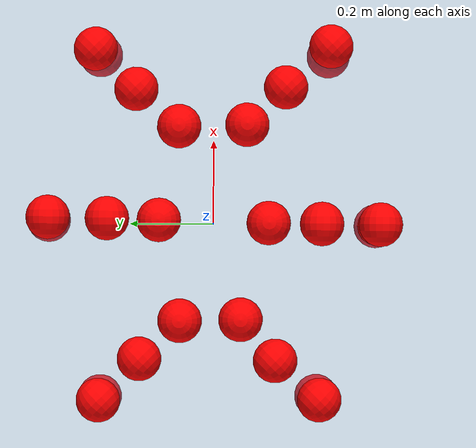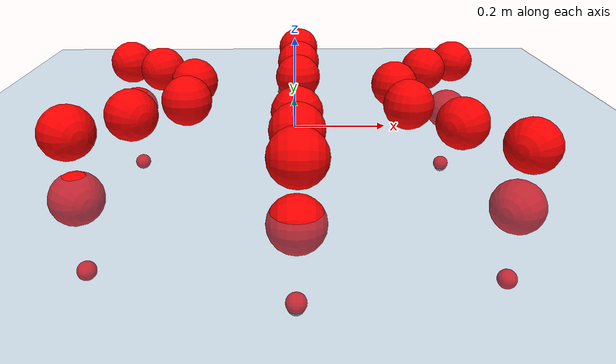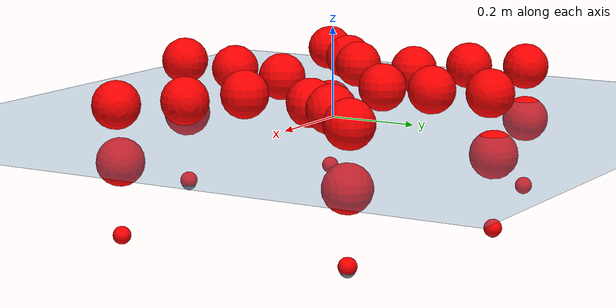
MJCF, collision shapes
<mujoco model="Golem">
  <compiler angle="radian" assetdir="assets" balanceinertia="true" inertiafromgeom="false"/>

  <option timestep="0.005" density="1.2" viscosity="2e-05"/>

  <size nkey="1"/>

  <visual>
    <quality shadowsize="8192"/>
    <map shadowclip="0.5"/>
  </visual>

  <default>
    <default class="/">
      <joint armature="0.01" damping="0.01" frictionloss="0.01"/>
      <geom contype="0" conaffinity="0" group="1" solref="-1000 -80"/>
      <site size="0.01 0.005 0.005" group="5"/>
      <general forcelimited="true" biastype="affine" gainprm="25" biasprm="0 -25 -0.5"/>
      <default class="visual">
        <geom type="mesh" group="2"/>
      </default>
      <default class="collision">
        <geom group="3"/>
      </default>
      <default class="foot">
        <geom size="0.01 0 0" condim="6" group="4" priority="1" solimp="0.015 1 0.01"/>
      </default>
      <default class="reward_collision_sphere">
        <geom group="5" rgba="1 0 0 1"/>
      </default>
    </default>
  </default>

  <asset>
    <texture type="skybox" colorspace="auto" name="//unnamed_texture_0" builtin="gradient" rgb1="0.95 0.95 0.95" rgb2="0.95 0.95 0.95" width="100" height="600"/>
    <texture type="2d" colorspace="auto" name="texplane" builtin="checker" rgb1="0.345 0.575 0.748" rgb2="0.345 0.575 0.748" markrgb="1 1 1" width="512" height="512"/>
    <material name="MatPlane" class="/" texture="texplane" texuniform="true" texrepeat="2 2" specular="0.9"/>
    <mesh name="body" class="/" file="body.stl" scale="0.001 0.001 0.001"/>
    <mesh name="coxa" class="/" file="coxa.stl" scale="0.001 0.001 0.001"/>
    <mesh name="femur" class="/" file="femur.stl" scale="0.001 0.001 0.001"/>
    <mesh name="tibia" class="/" file="tibia.stl" scale="0.001 0.001 0.001"/>
    <mesh name="tarsus" class="/" file="tarsus.stl" scale="0.001 0.001 0.001"/>
  </asset>

  <worldbody>
    <geom name="floor" class="/" size="100 100 0.125" type="plane" group="0" material="MatPlane"/>
    <light name="toplight_shadow" class="/" pos="0 0 5" dir="0.0990148 0.0990148 -0.990148" type="directional" ambient="0.04 0.04 0.04" diffuse="0.55 0.55 0.55" specular="0.12 0.12 0.12"/>
    <light name="toplight_fill" class="/" pos="0 0 5" dir="0.0990148 0.0990148 -0.990148" type="directional" castshadow="false" ambient="0.04 0.04 0.04" diffuse="0.3 0.3 0.3" specular="0.08 0.08 0.08"/>
    <body name="trunk" pos="0.00429817 0.0035223 0.000990111" quat="1 -0.000613458 0.000459498 -0.000485884">
      <inertial pos="-0.00414604 0.00151664 0.00896497" quat="0.999827 -0.0173917 0.00660045 -0.000363688" mass="7.89013" diaginertia="0.0705001 0.0345537 0.0197621"/>
      <joint name="//unnamed_joint_0" type="free"/>
      <geom name="//unnamed_geom_1" class="/" pos="0 0 0.0748238" quat="1 0 0 0" type="mesh" rgba="0.9 0.9 0.9 1" mesh="body"/>
      <site name="imu" class="/" pos="0.159483 -0.0213583 0.111106" size="0.0131208"/>
      <camera name="track" class="/" pos="0 -2.57358 0" quat="0.707107 0.707107 0 0" mode="trackcom"/>
      <camera name="ego_camera" class="/" pos="0.192443 0 0.116912" quat="-0.5 -0.5 0.5 0.5"/>
      <body name="coxa_RR" pos="-0.262036 -0.100264 0.081964" quat="0.382678 -0.000206098 -0.000259822 -0.923882">
        <inertial pos="-0.000333609 0.00130465 -0.000795436" quat="0.999984 0.00219476 -0.00241026 0.00468151" mass="0.451274" diaginertia="0.0748262 0.0362063 0.0247229"/>
        <joint name="coxa_joint_RR" class="/" pos="0 0 0" axis="0.00665461 -0.00583852 -0.999961" stiffness="0.0139297" range="-3.14218 3.17166" armature="0.0123491" damping="0.0181115" frictionloss="0.0119081"/>
        <geom name="//unnamed_geom_2" class="/" type="mesh" rgba="0.2 0.2 0.2 1" mesh="coxa"/>
        <geom name="//unnamed_geom_3" class="reward_collision_sphere" size="0.0524832" pos="-0.0444099 0 0"/>
        <body name="femur_RR" pos="0.0821943 -0.010015 -0.00217305" quat="0.500997 -0.499935 0.49904 0.500027">
          <inertial pos="0.00928194 -0.000434822 0.0104076" quat="0.998845 0.0320478 0.0356887 -0.00271288" mass="0.489729" diaginertia="0.0750534 0.0371366 0.0230272"/>
          <joint name="femur_joint_RR" class="/" pos="0 0 0" axis="0.00618846 -0.0103085 -0.999928" range="-3.13889 3.13447" armature="0.011672" damping="0.00452832" frictionloss="0.012952"/>
          <geom name="//unnamed_geom_4" class="/" type="mesh" rgba="0.9 0.9 0.9 1" mesh="femur"/>
          <geom name="//unnamed_geom_5" class="reward_collision_sphere" size="0.0524832"/>
          <body name="tibia_RR" pos="-0.00293979 -0.138655 0.00924798" quat="0.000732749 0.999999 -0.000931356 -0.000163335">
            <inertial pos="0.00137071 0.000450815 0.00711146" quat="0.999851 -0.00610308 -0.0136859 -0.00856594" mass="0.381898" diaginertia="0.0606573 0.028437 0.0189592"/>
            <joint name="tibia_joint_RR" class="/" pos="0 0 0" axis="-0.0305634 0.00753793 0.999504" stiffness="0.0174654" range="-3.06692 3.13146" armature="0.0144569" damping="0" frictionloss="0.0169087"/>
            <geom name="//unnamed_geom_6" class="/" type="mesh" rgba="0.2 0.2 0.2 1" mesh="tibia"/>
            <geom name="//unnamed_geom_7" class="reward_collision_sphere" size="0.0524832"/>
            <body name="tarsus_RR" pos="0.133021 -0.00204718 0.000309021" quat="1 0.000636731 -0.000194036 0.000167714">
              <inertial pos="0.091295 0.000129138 0.00206825" quat="0.52692 0.513314 0.46295 0.494511" mass="0.411799" diaginertia="0.0730247 0.0379544 0.020869"/>
              <joint name="tarsus_joint_RR" class="/" pos="0 0 0" axis="0.00287784 -0.0495915 0.998765" range="-3.17598 3.22235" armature="0.0142215" damping="0.0310876" frictionloss="0.0130898"/>
              <geom name="//unnamed_geom_8" class="/" type="mesh" rgba="0.9 0.9 0.9 1" mesh="tarsus"/>
              <geom name="foot_1" class="foot" size="0.0134351" pos="0.165797 0 0" quat="0 -0.707107 0 0.707107"/>
              <geom name="//unnamed_geom_10" class="reward_collision_sphere" size="0.0524832"/>
              <geom name="//unnamed_geom_11" class="reward_collision_sphere" size="0.0196812" pos="0.159136 0 0"/>
              <site name="foot_1" class="foot" pos="0.165797 0 0" quat="0 -0.707107 0 0.707107" size="0.0131208"/>
            </body>
          </body>
        </body>
      </body>
      <body name="coxa_RM" pos="-0.00166596 -0.17891 0.0782967" quat="0.707224 0.00296142 0.00400853 -0.706972">
        <inertial pos="0.0064041 0.00150139 0.00814885" quat="0.999628 0.0166558 -0.0140017 0.0164594" mass="0.44866" diaginertia="0.0831661 0.0354297 0.0224477"/>
        <joint name="coxa_joint_RM" class="/" pos="0 0 0" axis="0.0135145 0.0109779 -0.999848" range="-3.15642 3.1057" armature="0.0141085" damping="0.00712641" frictionloss="0.0143109"/>
        <geom name="//unnamed_geom_12" class="/" type="mesh" rgba="0.2 0.2 0.2 1" mesh="coxa"/>
        <geom name="//unnamed_geom_13" class="reward_collision_sphere" size="0.0524832" pos="-0.0444099 0 0"/>
        <body name="femur_RM" pos="0.0813361 -0.00157675 0.0101755" quat="0.499806 -0.499435 0.502116 0.498636">
          <inertial pos="-0.00850401 0.000485185 -0.000199918" quat="0.998947 0.039949 -0.0154793 0.0164042" mass="0.445969" diaginertia="0.0707293 0.0377468 0.0213371"/>
          <joint name="femur_joint_RM" class="/" pos="0 0 0" axis="0.0171618 0.0268871 -0.999491" stiffness="0.0168246" range="-3.10483 3.12715" armature="0.0124808" damping="0.00763271" frictionloss="0.0119582"/>
          <geom name="//unnamed_geom_14" class="/" type="mesh" rgba="0.9 0.9 0.9 1" mesh="femur"/>
          <geom name="//unnamed_geom_15" class="reward_collision_sphere" size="0.0524832"/>
          <body name="tibia_RM" pos="-0.00825139 -0.137948 -0.000461297" quat="9.03003e-05 1 2.96949e-05 -4.52976e-06">
            <inertial pos="0.00925942 -0.00142527 0.00364038" quat="0.999979 -0.00457207 0.0027601 -0.00356302" mass="0.434257" diaginertia="0.0659717 0.0376657 0.024386"/>
            <joint name="tibia_joint_RM" class="/" pos="0 0 0" axis="-0.0175762 0.0133389 0.999757" range="-3.10223 3.16616" armature="0.0132923" damping="0.0202689" frictionloss="0.0139072"/>
            <geom name="//unnamed_geom_16" class="/" type="mesh" rgba="0.2 0.2 0.2 1" mesh="tibia"/>
            <geom name="//unnamed_geom_17" class="reward_collision_sphere" size="0.0524832"/>
            <body name="tarsus_RM" pos="0.122145 -0.00149428 0.001186" quat="1 0.0005358 0.000474979 0.000686628">
              <inertial pos="0.0885084 0.000500036 -0.00155689" quat="0.497106 0.501924 0.499823 0.501133" mass="0.459029" diaginertia="0.0771425 0.0346273 0.0202106"/>
              <joint name="tarsus_joint_RM" class="/" pos="0 0 0" axis="0.0274715 0.00679269 0.9996" range="-3.10046 3.12757" armature="0.0137323" damping="0.014328" frictionloss="0.0143645"/>
              <geom name="//unnamed_geom_18" class="/" type="mesh" rgba="0.9 0.9 0.9 1" mesh="tarsus"/>
              <geom name="foot_2" class="foot" size="0.0169485" pos="0.165797 0 0" quat="0 -0.707107 0 0.707107"/>
              <geom name="//unnamed_geom_20" class="reward_collision_sphere" size="0.0524832"/>
              <geom name="//unnamed_geom_21" class="reward_collision_sphere" size="0.0196812" pos="0.159136 0 0"/>
              <site name="foot_2" class="foot" pos="0.165797 0 0" quat="0 -0.707107 0 0.707107" size="0.0131208"/>
            </body>
          </body>
        </body>
      </body>
      <body name="coxa_RF" pos="0.262623 -0.114071 0.0767565" quat="0.923868 0.00012556 1.3428e-05 -0.38271">
        <inertial pos="0.0100642 0.00136874 0.00235561" quat="0.999431 0.00409688 0.028829 -0.0170451" mass="0.382848" diaginertia="0.0666676 0.0382949 0.021445"/>
        <joint name="coxa_joint_RF" class="/" pos="0 0 0" axis="-0.000646109 0.0123571 -0.999923" range="-3.1051 3.12593" armature="0.00978155" damping="0.0126775" frictionloss="0.0135458"/>
        <geom name="//unnamed_geom_22" class="/" type="mesh" rgba="0.2 0.2 0.2 1" mesh="coxa"/>
        <geom name="//unnamed_geom_23" class="reward_collision_sphere" size="0.0524832" pos="-0.0444099 0 0"/>
        <body name="femur_RF" pos="0.0841315 -0.00112478 -0.00844319" quat="0.49986 -0.499982 0.499934 0.500225">
          <inertial pos="-0.00332609 -0.00919056 -0.0028825" quat="0.999956 0.00219421 -0.000991062 -0.00903613" mass="0.478758" diaginertia="0.0676151 0.0383131 0.0214445"/>
          <joint name="femur_joint_RF" class="/" pos="0 0 0" axis="-0.0147958 0.0128953 -0.999807" stiffness="0.0438049" range="-3.1123 3.22766" armature="0.0133397" damping="0" frictionloss="0.0129682"/>
          <geom name="//unnamed_geom_24" class="/" type="mesh" rgba="0.9 0.9 0.9 1" mesh="femur"/>
          <geom name="//unnamed_geom_25" class="reward_collision_sphere" size="0.0524832"/>
          <body name="tibia_RF" pos="0.00329382 -0.145059 -0.00645136" quat="-0.000700189 0.999999 1.75509e-06 -0.000961793">
            <inertial pos="0.00797174 0.00499485 -0.00687488" quat="0.999864 -0.00716369 -9.58402e-05 0.0148243" mass="0.420484" diaginertia="0.0698628 0.0359152 0.0221582"/>
            <joint name="tibia_joint_RF" class="/" pos="0 0 0" axis="-0.000791319 -0.00417867 0.999991" range="-3.10724 3.24136" armature="0.0115472" damping="0.0586992" frictionloss="0.014369"/>
            <geom name="//unnamed_geom_26" class="/" type="mesh" rgba="0.2 0.2 0.2 1" mesh="tibia"/>
            <geom name="//unnamed_geom_27" class="reward_collision_sphere" size="0.0524832"/>
            <body name="tarsus_RF" pos="0.123675 -0.00796569 0.00741932" quat="0.999997 0.00131646 0.00184198 0.000191263">
              <inertial pos="0.0861095 -0.000613544 -0.00237023" quat="0.498628 0.502514 0.499847 0.499003" mass="0.445693" diaginertia="0.0692376 0.0309486 0.0235182"/>
              <joint name="tarsus_joint_RF" class="/" pos="0 0 0" axis="-0.00456828 -0.00478695 0.999978" stiffness="0.00446419" range="-3.0837 3.14591" armature="0.00921843" damping="0.00399281" frictionloss="0.00646958"/>
              <geom name="//unnamed_geom_28" class="/" type="mesh" rgba="0.9 0.9 0.9 1" mesh="tarsus"/>
              <geom name="foot_3" class="foot" size="0.00894067" pos="0.165797 0 0" quat="0 -0.707107 0 0.707107"/>
              <geom name="//unnamed_geom_30" class="reward_collision_sphere" size="0.0524832"/>
              <geom name="//unnamed_geom_31" class="reward_collision_sphere" size="0.0196812" pos="0.159136 0 0"/>
              <site name="foot_3" class="foot" pos="0.165797 0 0" quat="0 -0.707107 0 0.707107" size="0.0131208"/>
            </body>
          </body>
        </body>
      </body>
      <body name="coxa_LR" pos="-0.265336 0.106398 0.0810482" quat="0.381335 -0.00362916 0.000759622 0.924429">
        <inertial pos="-0.00130872 0.00040105 0.00964331" quat="0.99958 -0.0222703 0.0102794 -0.0154459" mass="0.555496" diaginertia="0.0802505 0.0402008 0.0251102"/>
        <joint name="coxa_joint_LR" class="/" pos="0 0 0" axis="-0.000417864 0.00244228 -0.999997" range="-3.13469 2.94355" armature="0.00924887" damping="0.0135995" frictionloss="0.0194973"/>
        <geom name="//unnamed_geom_32" class="/" type="mesh" rgba="0.2 0.2 0.2 1" mesh="coxa"/>
        <geom name="//unnamed_geom_33" class="reward_collision_sphere" size="0.0524832" pos="-0.0444099 0 0"/>
        <body name="femur_LR" pos="0.0865787 -0.00385692 0.00503042" quat="0.499474 -0.50096 0.500198 0.499367">
          <inertial pos="-0.00166443 -0.00194045 -0.00139188" quat="0.999865 -0.00919739 -0.013367 -0.00240997" mass="0.467517" diaginertia="0.0753152 0.0319879 0.0232187"/>
          <joint name="femur_joint_LR" class="/" pos="0 0 0" axis="1.91743e-05 -0.00430079 0.999991" stiffness="0.0213405" range="-3.0966 3.25393" armature="0.0103596" damping="0.00791891" frictionloss="0.0132939"/>
          <geom name="//unnamed_geom_34" class="/" type="mesh" rgba="0.9 0.9 0.9 1" mesh="femur"/>
          <geom name="//unnamed_geom_35" class="reward_collision_sphere" size="0.0524832"/>
          <body name="tibia_LR" pos="0.00655731 -0.138105 0.000864105" quat="-0.00157672 0.999996 0.00176607 0.00169295">
            <inertial pos="-0.00404218 -0.00875133 0.000789023" quat="0.999533 -0.023411 -0.0170118 -0.00978277" mass="0.469671" diaginertia="0.0607433 0.0317083 0.0239579"/>
            <joint name="tibia_joint_LR" class="/" pos="0 0 0" axis="0.0163746 -0.000823984 -0.999866" range="-3.16113 3.13256" armature="0.0127373" damping="0" frictionloss="0.0110165"/>
            <geom name="//unnamed_geom_36" class="/" type="mesh" rgba="0.2 0.2 0.2 1" mesh="tibia"/>
            <geom name="//unnamed_geom_37" class="reward_collision_sphere" size="0.0524832"/>
            <body name="tarsus_LR" pos="0.122479 0.00159555 0.00242747" quat="1 -0.000547128 0.000128337 0.000772878">
              <inertial pos="0.0912005 0.00402221 0.000736634" quat="0.496429 0.509041 0.495541 0.498874" mass="0.501427" diaginertia="0.0792529 0.0405267 0.0248807"/>
              <joint name="tarsus_joint_LR" class="/" pos="0 0 0" axis="-0.0049418 0.00466769 -0.999977" range="-3.16383 3.12409" armature="0.0199289" damping="0.0361544" frictionloss="0.0136766"/>
              <geom name="//unnamed_geom_38" class="/" type="mesh" rgba="0.9 0.9 0.9 1" mesh="tarsus"/>
              <geom name="foot_4" class="foot" size="0.0134979" pos="0.165797 0 0" quat="0.707107 0 -0.707107 0"/>
              <geom name="//unnamed_geom_40" class="reward_collision_sphere" size="0.0524832"/>
              <geom name="//unnamed_geom_41" class="reward_collision_sphere" size="0.0196812" pos="0.159136 0 0"/>
              <site name="foot_4" class="foot" pos="0.165797 0 0" quat="0.707107 0 -0.707107 0" size="0.0131208"/>
            </body>
          </body>
        </body>
      </body>
      <body name="coxa_LM" pos="0.0047511 0.170197 0.0776985" quat="0.710524 -0.00104718 -0.00226099 0.703668">
        <inertial pos="-0.0067142 0.00774331 0.00355931" quat="0.999461 0.0142809 0.00938272 0.0280365" mass="0.442634" diaginertia="0.0738913 0.0346399 0.0206451"/>
        <joint name="coxa_joint_LM" class="/" pos="0 0 0" axis="-0.00404181 0.00223955 -0.999989" range="-3.17043 3.15776" armature="0.00679194" damping="0.0202188" frictionloss="0.012776"/>
        <geom name="//unnamed_geom_42" class="/" type="mesh" rgba="0.2 0.2 0.2 1" mesh="coxa"/>
        <geom name="//unnamed_geom_43" class="reward_collision_sphere" size="0.0524832" pos="-0.0444099 0 0"/>
        <body name="femur_LM" pos="0.0783097 -0.00210566 0.0051732" quat="0.498635 -0.502117 0.499049 0.500192">
          <inertial pos="0.00635742 0.000393694 0.00784777" quat="0.999848 0.00864324 -0.0139184 0.00603906" mass="0.383875" diaginertia="0.0661551 0.0337932 0.0205084"/>
          <joint name="femur_joint_LM" class="/" pos="0 0 0" axis="0.0113127 -0.00779534 0.999906" range="-3.22003 3.13875" armature="0.0101589" damping="0.0148977" frictionloss="0.0127382"/>
          <geom name="//unnamed_geom_44" class="/" type="mesh" rgba="0.9 0.9 0.9 1" mesh="femur"/>
          <geom name="//unnamed_geom_45" class="reward_collision_sphere" size="0.0524832"/>
          <body name="tibia_LM" pos="-0.00468458 -0.139683 -0.00149794" quat="-7.91089e-05 1 8.76028e-05 -0.000110078">
            <inertial pos="-0.00937098 -0.00997839 -0.0103709" quat="0.999985 0.00451574 -0.00258015 0.00185512" mass="0.443326" diaginertia="0.0712031 0.0377114 0.0199183"/>
            <joint name="tibia_joint_LM" class="/" pos="0 0 0" axis="-0.0091819 -0.0130593 -0.999873" stiffness="0.0276174" range="-3.13992 3.15848" armature="0.0100565" damping="0" frictionloss="0.0168535"/>
            <geom name="//unnamed_geom_46" class="/" type="mesh" rgba="0.2 0.2 0.2 1" mesh="tibia"/>
            <geom name="//unnamed_geom_47" class="reward_collision_sphere" size="0.0524832"/>
            <body name="tarsus_LM" pos="0.131352 0.00704448 -0.00619676" quat="0.999998 -0.00061512 0.00172004 0.00116952">
              <inertial pos="0.0876754 -0.00145688 -0.00380736" quat="0.500078 0.506784 0.498047 0.495016" mass="0.396745" diaginertia="0.069399 0.0268477 0.0196593"/>
              <joint name="tarsus_joint_LM" class="/" pos="0 0 0" axis="-0.030069 0.00880885 -0.999509" range="-2.91715 3.17298" armature="0.0123563" damping="0" frictionloss="0.0131706"/>
              <geom name="//unnamed_geom_48" class="/" type="mesh" rgba="0.9 0.9 0.9 1" mesh="tarsus"/>
              <geom name="foot_5" class="foot" size="0.0139225" pos="0.165797 0 0" quat="0.707107 0 -0.707107 0"/>
              <geom name="//unnamed_geom_50" class="reward_collision_sphere" size="0.0524832"/>
              <geom name="//unnamed_geom_51" class="reward_collision_sphere" size="0.0196812" pos="0.159136 0 0"/>
              <site name="foot_5" class="foot" pos="0.165797 0 0" quat="0.707107 0 -0.707107 0" size="0.0131208"/>
            </body>
          </body>
        </body>
      </body>
      <body name="coxa_LF" pos="0.258854 0.110159 0.0728623" quat="0.92541 -0.000273389 -0.000243133 0.378968">
        <inertial pos="0.000417125 -0.00965159 -0.00189531" quat="0.999955 -0.000767728 0.00818248 -0.00469702" mass="0.426977" diaginertia="0.0653615 0.028721 0.0195055"/>
        <joint name="coxa_joint_LF" class="/" pos="0 0 0" axis="0.0126147 -0.0155243 -0.9998" range="-3.13316 3.17685" armature="0.00640739" damping="0.00970456" frictionloss="0.0129834"/>
        <geom name="//unnamed_geom_52" class="/" type="mesh" rgba="0.2 0.2 0.2 1" mesh="coxa"/>
        <geom name="//unnamed_geom_53" class="reward_collision_sphere" size="0.0524832" pos="-0.0444099 0 0"/>
        <body name="femur_LF" pos="0.0892101 0.0112805 0.00875755" quat="0.498488 -0.498498 0.500842 0.502161">
          <inertial pos="-0.00459276 -0.00104631 -0.0103433" quat="0.999317 0.0204615 -0.030501 -0.00408122" mass="0.460067" diaginertia="0.0743782 0.0305032 0.0212691"/>
          <joint name="femur_joint_LF" class="/" pos="0 0 0" axis="0.0095948 0.0280981 0.999559" stiffness="0.0338959" range="-3.16612 3.32218" armature="0.0132813" damping="0.0254409" frictionloss="0.0133552"/>
          <geom name="//unnamed_geom_54" class="/" type="mesh" rgba="0.9 0.9 0.9 1" mesh="femur"/>
          <geom name="//unnamed_geom_55" class="reward_collision_sphere" size="0.0524832"/>
          <body name="tibia_LF" pos="0.00541538 -0.136188 0.00235627" quat="-0.000450464 0.999993 0.00270914 -0.00260462">
            <inertial pos="0.000563161 0.00876433 0.000756362" quat="0.999979 0.00208442 0.00604728 -0.000681619" mass="0.438384" diaginertia="0.0733116 0.0348877 0.021863"/>
            <joint name="tibia_joint_LF" class="/" pos="0 0 0" axis="-0.011059 0.0314869 -0.999443" range="-3.00349 3.17714" armature="0.0105091" damping="0.016047" frictionloss="0.00777816"/>
            <geom name="//unnamed_geom_56" class="/" type="mesh" rgba="0.2 0.2 0.2 1" mesh="tibia"/>
            <geom name="//unnamed_geom_57" class="reward_collision_sphere" size="0.0524832"/>
            <body name="tarsus_LF" pos="0.130644 -0.00426635 0.00181106" quat="0.999986 0.0016269 0.00508686 -3.9368e-05">
              <inertial pos="0.0932003 -0.000461742 -0.00139147" quat="0.495834 0.507614 0.498864 0.497605" mass="0.441598" diaginertia="0.07578 0.0371027 0.0245303"/>
              <joint name="tarsus_joint_LF" class="/" pos="0 0 0" axis="0.0198589 -0.0478572 -0.998657" stiffness="0.00289496" range="-3.15887 3.27256" armature="0.0124738" damping="0.0516735" frictionloss="0.0113741"/>
              <geom name="//unnamed_geom_58" class="/" type="mesh" rgba="0.9 0.9 0.9 1" mesh="tarsus"/>
              <geom name="foot_6" class="foot" size="0.0164557" pos="0.165797 0 0" quat="0.707107 0 -0.707107 0"/>
              <geom name="//unnamed_geom_60" class="reward_collision_sphere" size="0.0524832"/>
              <geom name="//unnamed_geom_61" class="reward_collision_sphere" size="0.0196812" pos="0.159136 0 0"/>
              <site name="foot_6" class="foot" pos="0.165797 0 0" quat="0.707107 0 -0.707107 0" size="0.0131208"/>
            </body>
          </body>
        </body>
      </body>
    </body>
  </worldbody>

  <contact>
    <pair class="/" geom1="floor" geom2="foot_1" name="//unnamed_contact_0"/>
    <pair class="/" geom1="floor" geom2="foot_2" name="//unnamed_contact_1"/>
    <pair class="/" geom1="floor" geom2="foot_3" name="//unnamed_contact_2"/>
    <pair class="/" geom1="floor" geom2="foot_4" name="//unnamed_contact_3"/>
    <pair class="/" geom1="floor" geom2="foot_5" name="//unnamed_contact_4"/>
    <pair class="/" geom1="floor" geom2="foot_6" name="//unnamed_contact_5"/>
  </contact>

  <actuator>
    <general name="coxa_joint_RR" class="/" joint="coxa_joint_RR" forcerange="-12.7658 12.7658" gainprm="30.7701" biasprm="0 -30.7701 -0.714849"/>
    <general name="femur_joint_RR" class="/" joint="femur_joint_RR" forcerange="-8.77278 8.77278" gainprm="30.7701" biasprm="0 -30.7701 -0.714849"/>
    <general name="tibia_joint_RR" class="/" joint="tibia_joint_RR" forcerange="-13.1664 13.1664" gainprm="30.7701" biasprm="0 -30.7701 -0.714849"/>
    <general name="tarsus_joint_RR" class="/" joint="tarsus_joint_RR" forcerange="-8.46701 8.46701" gainprm="30.7701" biasprm="0 -30.7701 -0.714849"/>
    <general name="coxa_joint_RM" class="/" joint="coxa_joint_RM" forcerange="-9.45277 9.45277" gainprm="30.7701" biasprm="0 -30.7701 -0.714849"/>
    <general name="femur_joint_RM" class="/" joint="femur_joint_RM" forcerange="-9.74232 9.74232" gainprm="30.7701" biasprm="0 -30.7701 -0.714849"/>
    <general name="tibia_joint_RM" class="/" joint="tibia_joint_RM" forcerange="-12.3911 12.3911" gainprm="30.7701" biasprm="0 -30.7701 -0.714849"/>
    <general name="tarsus_joint_RM" class="/" joint="tarsus_joint_RM" forcerange="-6.13765 6.13765" gainprm="30.7701" biasprm="0 -30.7701 -0.714849"/>
    <general name="coxa_joint_RF" class="/" joint="coxa_joint_RF" forcerange="-9.81219 9.81219" gainprm="30.7701" biasprm="0 -30.7701 -0.714849"/>
    <general name="femur_joint_RF" class="/" joint="femur_joint_RF" forcerange="-8.94914 8.94914" gainprm="30.7701" biasprm="0 -30.7701 -0.714849"/>
    <general name="tibia_joint_RF" class="/" joint="tibia_joint_RF" forcerange="-6.50329 6.50329" gainprm="30.7701" biasprm="0 -30.7701 -0.714849"/>
    <general name="tarsus_joint_RF" class="/" joint="tarsus_joint_RF" forcerange="-8.8501 8.8501" gainprm="30.7701" biasprm="0 -30.7701 -0.714849"/>
    <general name="coxa_joint_LR" class="/" joint="coxa_joint_LR" forcerange="-9.37148 9.37148" gainprm="30.7701" biasprm="0 -30.7701 -0.714849"/>
    <general name="femur_joint_LR" class="/" joint="femur_joint_LR" forcerange="-11.9127 11.9127" gainprm="30.7701" biasprm="0 -30.7701 -0.714849"/>
    <general name="tibia_joint_LR" class="/" joint="tibia_joint_LR" forcerange="-10.2729 10.2729" gainprm="30.7701" biasprm="0 -30.7701 -0.714849"/>
    <general name="tarsus_joint_LR" class="/" joint="tarsus_joint_LR" forcerange="-11.1913 11.1913" gainprm="30.7701" biasprm="0 -30.7701 -0.714849"/>
    <general name="coxa_joint_LM" class="/" joint="coxa_joint_LM" forcerange="-10.2756 10.2756" gainprm="30.7701" biasprm="0 -30.7701 -0.714849"/>
    <general name="femur_joint_LM" class="/" joint="femur_joint_LM" forcerange="-9.60273 9.60273" gainprm="30.7701" biasprm="0 -30.7701 -0.714849"/>
    <general name="tibia_joint_LM" class="/" joint="tibia_joint_LM" forcerange="-11.4782 11.4782" gainprm="30.7701" biasprm="0 -30.7701 -0.714849"/>
    <general name="tarsus_joint_LM" class="/" joint="tarsus_joint_LM" forcerange="-9.30934 9.30934" gainprm="30.7701" biasprm="0 -30.7701 -0.714849"/>
    <general name="coxa_joint_LF" class="/" joint="coxa_joint_LF" forcerange="-9.94638 9.94638" gainprm="30.7701" biasprm="0 -30.7701 -0.714849"/>
    <general name="femur_joint_LF" class="/" joint="femur_joint_LF" forcerange="-9.66515 9.66515" gainprm="30.7701" biasprm="0 -30.7701 -0.714849"/>
    <general name="tibia_joint_LF" class="/" joint="tibia_joint_LF" forcerange="-7.9174 7.9174" gainprm="30.7701" biasprm="0 -30.7701 -0.714849"/>
    <general name="tarsus_joint_LF" class="/" joint="tarsus_joint_LF" forcerange="-10.2155 10.2155" gainprm="30.7701" biasprm="0 -30.7701 -0.714849"/>
  </actuator>

  <sensor>
    <gyro site="imu" name="imu_angular_velocity"/>
    <velocimeter site="imu" name="imu_linear_velocity"/>
    <framelinvel objtype="site" objname="foot_1" name="foot_1_global_linear_velocity"/>
    <framelinvel objtype="site" objname="foot_2" name="foot_2_global_linear_velocity"/>
    <framelinvel objtype="site" objname="foot_3" name="foot_3_global_linear_velocity"/>
    <framelinvel objtype="site" objname="foot_4" name="foot_4_global_linear_velocity"/>
    <framelinvel objtype="site" objname="foot_5" name="foot_5_global_linear_velocity"/>
    <framelinvel objtype="site" objname="foot_6" name="foot_6_global_linear_velocity"/>
  </sensor>

  <keyframe>
    <key name="home" qpos="0 0 0.1457 1 0 0 0 0 0 0 0 0 0 0 0 0 0 0 0 0 0 0 0 0 0 0 0 0 0 0 0"/>
  </keyframe>
</mujoco>
